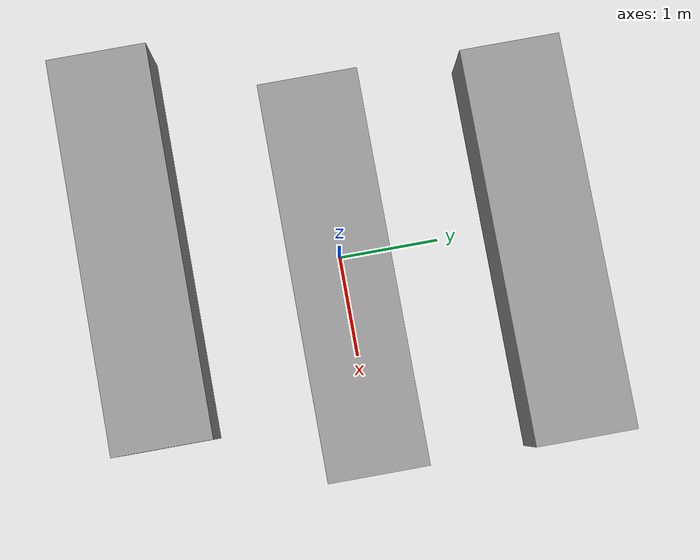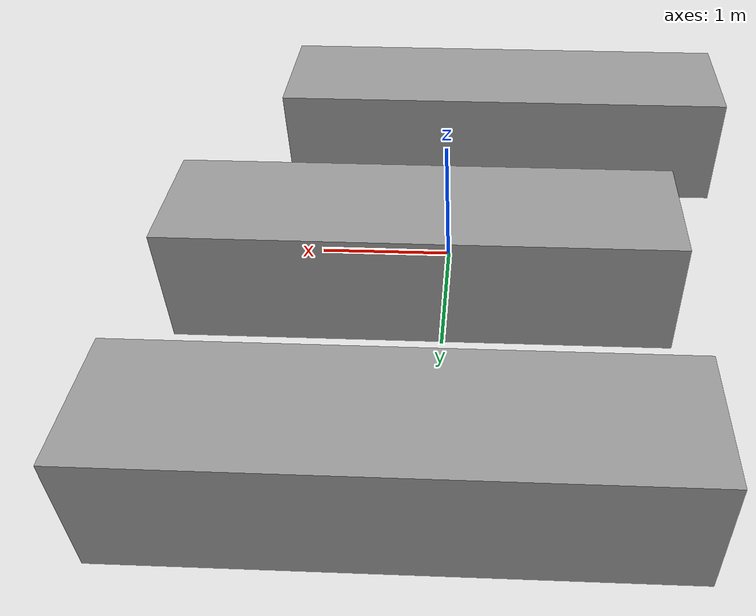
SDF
<?xml version='1.0'?>
<sdf version='1.7'>
  <model name='newshelf'>
    <link name='link_0'>
      <inertial>
        <mass>3.95578</mass>
        <inertia>
          <ixx>0.659297</ixx>
          <ixy>0</ixy>
          <ixz>0</ixz>
          <iyy>5.48803</iyy>
          <iyz>0</iyz>
          <izz>5.48803</izz>
        </inertia>
        <pose>0 0 0 0 -0 0</pose>
      </inertial>
      <pose>0.213201 2.02357 0 0 -0 0</pose>
      <visual name='visual'>
        <pose>0 0 0 0 -0 0</pose>
        <geometry>
          <box>
            <size>3.95577 1 1</size>
          </box>
        </geometry>
        <material>
          <lighting>1</lighting>
          <script>
            <uri>file://media/materials/scripts/gazebo.material</uri>
            <name>Gazebo/Grey</name>
          </script>
          <shader type='pixel'/>
        </material>
        <transparency>0</transparency>
        <cast_shadows>1</cast_shadows>
      </visual>
      <collision name='collision'>
        <laser_retro>0</laser_retro>
        <max_contacts>10</max_contacts>
        <pose>0 0 0 0 -0 0</pose>
        <geometry>
          <box>
            <size>3.95577 1 1</size>
          </box>
        </geometry>
        <surface>
          <friction>
            <ode>
              <mu>1</mu>
              <mu2>1</mu2>
              <fdir1>0 0 0</fdir1>
              <slip1>0</slip1>
              <slip2>0</slip2>
            </ode>
            <torsional>
              <coefficient>1</coefficient>
              <patch_radius>0</patch_radius>
              <surface_radius>0</surface_radius>
              <use_patch_radius>1</use_patch_radius>
              <ode>
                <slip>0</slip>
              </ode>
            </torsional>
          </friction>
          <bounce>
            <restitution_coefficient>0</restitution_coefficient>
            <threshold>1e+06</threshold>
          </bounce>
          <contact>
            <collide_without_contact>0</collide_without_contact>
            <collide_without_contact_bitmask>1</collide_without_contact_bitmask>
            <collide_bitmask>1</collide_bitmask>
            <ode>
              <soft_cfm>0</soft_cfm>
              <soft_erp>0.2</soft_erp>
              <kp>1e+13</kp>
              <kd>1</kd>
              <max_vel>0.01</max_vel>
              <min_depth>0</min_depth>
            </ode>
            <bullet>
              <split_impulse>1</split_impulse>
              <split_impulse_penetration_threshold>-0.01</split_impulse_penetration_threshold>
              <soft_cfm>0</soft_cfm>
              <soft_erp>0.2</soft_erp>
              <kp>1e+13</kp>
              <kd>1</kd>
            </bullet>
          </contact>
        </surface>
      </collision>
    </link>
    <link name='link_0_clone'>
      <inertial>
        <mass>3.95578</mass>
        <inertia>
          <ixx>0.659297</ixx>
          <ixy>0</ixy>
          <ixz>0</ixz>
          <iyy>5.48803</iyy>
          <iyz>0</iyz>
          <izz>5.48803</izz>
        </inertia>
        <pose>0 0 0 0 -0 0</pose>
      </inertial>
      <pose>0.201043 -0.007304 0 0 -0 0</pose>
      <visual name='visual'>
        <pose>0 0 0 0 -0 0</pose>
        <geometry>
          <box>
            <size>3.95577 1 1</size>
          </box>
        </geometry>
        <material>
          <lighting>1</lighting>
          <script>
            <uri>file://media/materials/scripts/gazebo.material</uri>
            <name>Gazebo/Grey</name>
          </script>
          <shader type='pixel'/>
        </material>
        <transparency>0</transparency>
        <cast_shadows>1</cast_shadows>
      </visual>
      <collision name='collision'>
        <laser_retro>0</laser_retro>
        <max_contacts>10</max_contacts>
        <pose>0 0 0 0 -0 0</pose>
        <geometry>
          <box>
            <size>3.95577 1 1</size>
          </box>
        </geometry>
        <surface>
          <friction>
            <ode>
              <mu>1</mu>
              <mu2>1</mu2>
              <fdir1>0 0 0</fdir1>
              <slip1>0</slip1>
              <slip2>0</slip2>
            </ode>
            <torsional>
              <coefficient>1</coefficient>
              <patch_radius>0</patch_radius>
              <surface_radius>0</surface_radius>
              <use_patch_radius>1</use_patch_radius>
              <ode>
                <slip>0</slip>
              </ode>
            </torsional>
          </friction>
          <bounce>
            <restitution_coefficient>0</restitution_coefficient>
            <threshold>1e+06</threshold>
          </bounce>
          <contact>
            <collide_without_contact>0</collide_without_contact>
            <collide_without_contact_bitmask>1</collide_without_contact_bitmask>
            <collide_bitmask>1</collide_bitmask>
            <ode>
              <soft_cfm>0</soft_cfm>
              <soft_erp>0.2</soft_erp>
              <kp>1e+13</kp>
              <kd>1</kd>
              <max_vel>0.01</max_vel>
              <min_depth>0</min_depth>
            </ode>
            <bullet>
              <split_impulse>1</split_impulse>
              <split_impulse_penetration_threshold>-0.01</split_impulse_penetration_threshold>
              <soft_cfm>0</soft_cfm>
              <soft_erp>0.2</soft_erp>
              <kp>1e+13</kp>
              <kd>1</kd>
            </bullet>
          </contact>
        </surface>
      </collision>
    </link>
    <link name='link_0_clone_0'>
      <inertial>
        <mass>3.95578</mass>
        <inertia>
          <ixx>0.659297</ixx>
          <ixy>0</ixy>
          <ixz>0</ixz>
          <iyy>5.48803</iyy>
          <iyz>0</iyz>
          <izz>5.48803</izz>
        </inertia>
        <pose>0 0 0 0 -0 0</pose>
      </inertial>
      <pose>-0.414244 -2.01627 0 0 -0 0</pose>
      <visual name='visual'>
        <pose>0 0 0 0 -0 0</pose>
        <geometry>
          <box>
            <size>3.95577 1 1</size>
          </box>
        </geometry>
        <material>
          <lighting>1</lighting>
          <script>
            <uri>file://media/materials/scripts/gazebo.material</uri>
            <name>Gazebo/Grey</name>
          </script>
          <shader type='pixel'/>
        </material>
        <transparency>0</transparency>
        <cast_shadows>1</cast_shadows>
      </visual>
      <collision name='collision'>
        <laser_retro>0</laser_retro>
        <max_contacts>10</max_contacts>
        <pose>0 0 0 0 -0 0</pose>
        <geometry>
          <box>
            <size>3.95577 1 1</size>
          </box>
        </geometry>
        <surface>
          <friction>
            <ode>
              <mu>1</mu>
              <mu2>1</mu2>
              <fdir1>0 0 0</fdir1>
              <slip1>0</slip1>
              <slip2>0</slip2>
            </ode>
            <torsional>
              <coefficient>1</coefficient>
              <patch_radius>0</patch_radius>
              <surface_radius>0</surface_radius>
              <use_patch_radius>1</use_patch_radius>
              <ode>
                <slip>0</slip>
              </ode>
            </torsional>
          </friction>
          <bounce>
            <restitution_coefficient>0</restitution_coefficient>
            <threshold>1e+06</threshold>
          </bounce>
          <contact>
            <collide_without_contact>0</collide_without_contact>
            <collide_without_contact_bitmask>1</collide_without_contact_bitmask>
            <collide_bitmask>1</collide_bitmask>
            <ode>
              <soft_cfm>0</soft_cfm>
              <soft_erp>0.2</soft_erp>
              <kp>1e+13</kp>
              <kd>1</kd>
              <max_vel>0.01</max_vel>
              <min_depth>0</min_depth>
            </ode>
            <bullet>
              <split_impulse>1</split_impulse>
              <split_impulse_penetration_threshold>-0.01</split_impulse_penetration_threshold>
              <soft_cfm>0</soft_cfm>
              <soft_erp>0.2</soft_erp>
              <kp>1e+13</kp>
              <kd>1</kd>
            </bullet>
          </contact>
        </surface>
      </collision>
    </link>
    <static>0</static>
    <allow_auto_disable>1</allow_auto_disable>
  </model>
</sdf>
